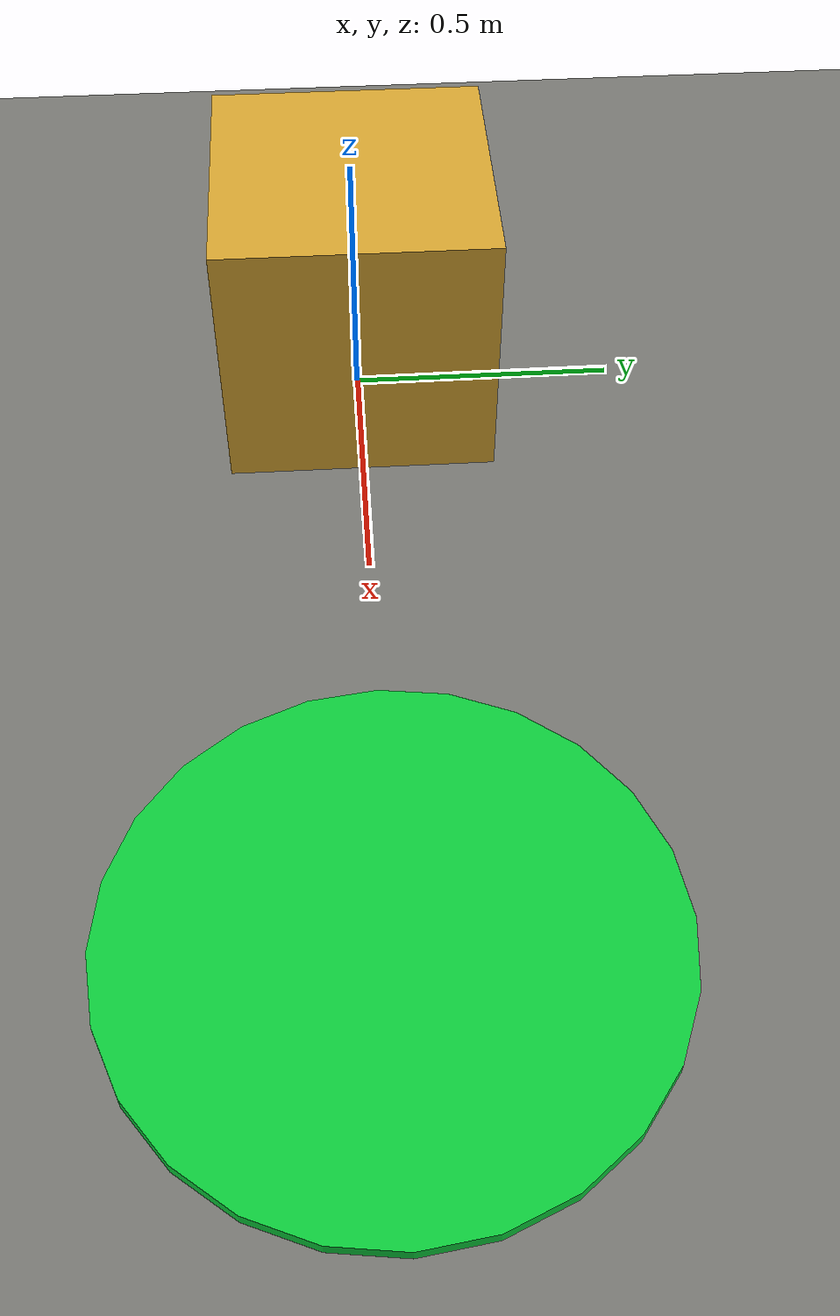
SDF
<sdf version='1.7'>
  <world name='transport_controller_demo'>
    <light name='sun' type='directional'>
      <cast_shadows>1</cast_shadows>
      <pose>0 0 10 0 0 0</pose>
      <diffuse>0.82 0.82 0.82 1</diffuse>
      <specular>0.2 0.2 0.2 1</specular>
      <attenuation>
        <range>1000</range>
        <constant>0.9</constant>
        <linear>0.01</linear>
        <quadratic>0.001</quadratic>
      </attenuation>
      <direction>-0.25 0.15 -0.95</direction>
    </light>

    <model name='ground_plane'>
      <static>1</static>
      <link name='link'>
        <collision name='collision'>
          <geometry><plane><normal>0 0 1</normal><size>8 8</size></plane></geometry>
          <surface>
            <friction><ode><mu>0.9</mu><mu2>0.9</mu2></ode></friction>
          </surface>
        </collision>
        <visual name='visual'>
          <cast_shadows>0</cast_shadows>
          <geometry><plane><normal>0 0 1</normal><size>8 8</size></plane></geometry>
          <material>
            <ambient>0.48 0.48 0.46 1</ambient>
            <diffuse>0.48 0.48 0.46 1</diffuse>
          </material>
        </visual>
      </link>
    </model>

    <model name='robosar_target_zone_1'>
      <static>1</static>
      <pose>1.25 0 0.0125 0 0 0</pose>
      <link name='link'>
        <visual name='visual'>
          <cast_shadows>0</cast_shadows>
          <geometry><cylinder><radius>0.45</radius><length>0.025</length></cylinder></geometry>
          <material>
            <ambient>0.05 0.82 0.24 1</ambient>
            <diffuse>0.05 0.82 0.24 1</diffuse>
            <emissive>0.0 0.14 0.02 1</emissive>
          </material>
        </visual>
      </link>
    </model>

    <model name='robosar_transport_box_1'>
      <static>0</static>
      <pose>0 0 0.25 0 0 0</pose>
      <link name='link'>
        <!-- Damped high-inertia box: remains pushable while low TB3 contact force no longer pitches it upward. -->
        <inertial>
          <mass>1.2</mass>
          <inertia>
            <ixx>0.5</ixx>
            <iyy>0.5</iyy>
            <izz>0.5</izz>
            <ixy>0</ixy>
            <ixz>0</ixz>
            <iyz>0</iyz>
          </inertia>
        </inertial>
        <collision name='collision'>
          <geometry><box><size>0.5 0.5 0.5</size></box></geometry>
          <surface>
            <friction>
              <ode>
                <mu>0.25</mu>
                <mu2>0.25</mu2>
                <fdir1>1 0 0</fdir1>
              </ode>
            </friction>
            <contact>
              <ode>
                <kp>50000</kp>
                <kd>0.2</kd>
                <min_depth>0.001</min_depth>
                <max_vel>0.1</max_vel>
              </ode>
            </contact>
          </surface>
        </collision>
        <visual name='visual'>
          <geometry><box><size>0.5 0.5 0.5</size></box></geometry>
          <material>
            <ambient>0.86 0.66 0.20 1</ambient>
            <diffuse>0.86 0.66 0.20 1</diffuse>
            <specular>0.20 0.16 0.06 1</specular>
          </material>
        </visual>
      </link>
    </model>

    <gravity>0 0 -9.8</gravity>
    <physics type='ode'>
      <max_step_size>0.001</max_step_size>
      <real_time_factor>1</real_time_factor>
      <real_time_update_rate>1000</real_time_update_rate>
    </physics>
    <scene>
      <ambient>0.46 0.46 0.46 1</ambient>
      <background>0.73 0.75 0.77 1</background>
      <shadows>1</shadows>
    </scene>
    <gui fullscreen='0'>
      <camera name='user_camera'>
        <pose>0 -5.0 7.2 0 0.96 1.57</pose>
        <view_controller>orbit</view_controller>
        <projection_type>perspective</projection_type>
      </camera>
    </gui>
  </world>
</sdf>
